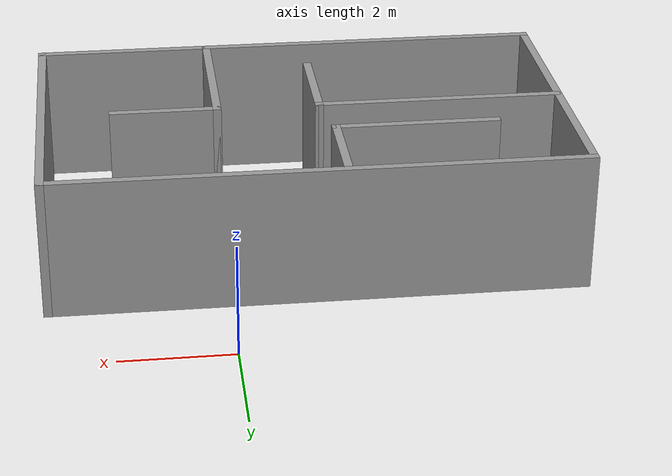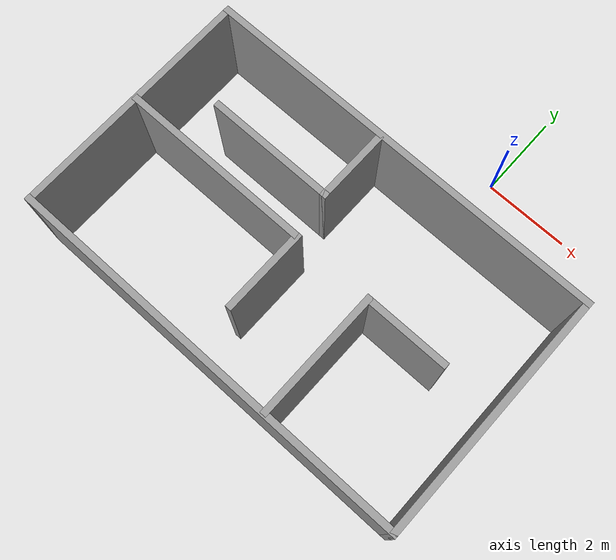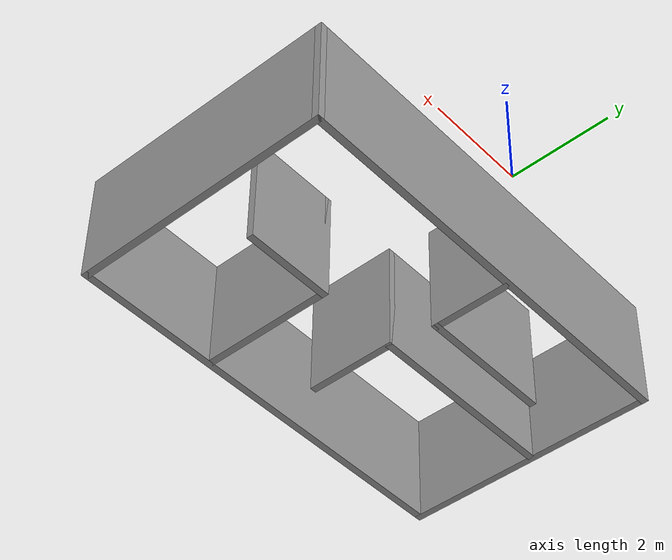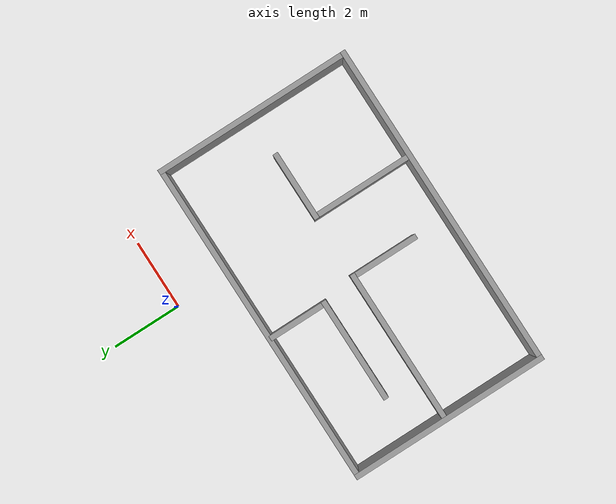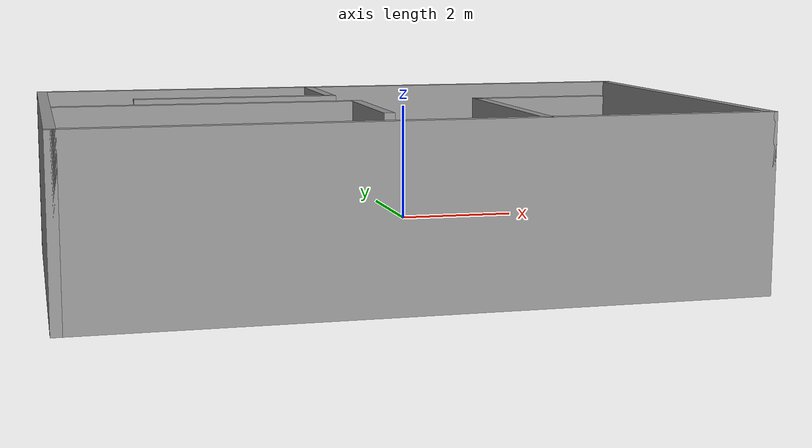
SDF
<?xml version='1.0'?>
<sdf version='1.7'>
  <model name='room'>
    <pose>-1.555 -3.6625 0 0 -0 0</pose>
    <link name='Wall_1'>
      <collision name='Wall_1_Collision'>
        <geometry>
          <box>
            <size>5.75 0.15 2.5</size>
          </box>
        </geometry>
        <pose>0 0 1.25 0 -0 0</pose>
      </collision>
      <visual name='Wall_1_Visual'>
        <pose>0 0 1.25 0 -0 0</pose>
        <geometry>
          <box>
            <size>5.75 0.15 2.5</size>
          </box>
        </geometry>
        <material>
          <script>
            <uri>file://media/materials/scripts/gazebo.material</uri>
            <name>Gazebo/Grey</name>
          </script>
          <ambient>1 1 1 1</ambient>
        </material>
        <meta>
          <layer>0</layer>
        </meta>
      </visual>
      <pose>-4.675 -0.7875 0 0 -0 -1.5708</pose>
    </link>
    <link name='Wall_10'>
      <collision name='Wall_10_Collision'>
        <geometry>
          <box>
            <size>2 0.15 2.5</size>
          </box>
        </geometry>
        <pose>0 0 1.25 0 -0 0</pose>
      </collision>
      <visual name='Wall_10_Visual'>
        <pose>0 0 1.25 0 -0 0</pose>
        <geometry>
          <box>
            <size>2 0.15 2.5</size>
          </box>
        </geometry>
        <material>
          <script>
            <uri>file://media/materials/scripts/gazebo.material</uri>
            <name>Gazebo/Grey</name>
          </script>
          <ambient>1 1 1 1</ambient>
        </material>
        <meta>
          <layer>0</layer>
        </meta>
      </visual>
      <pose>2.47 -0.6975 0 0 -0 0</pose>
    </link>
    <link name='Wall_12'>
      <collision name='Wall_12_Collision'>
        <geometry>
          <box>
            <size>3 0.15 2.5</size>
          </box>
        </geometry>
        <pose>0 0 1.25 0 -0 0</pose>
      </collision>
      <visual name='Wall_12_Visual'>
        <pose>0 0 1.25 0 -0 0</pose>
        <geometry>
          <box>
            <size>3 0.15 2.5</size>
          </box>
        </geometry>
        <material>
          <script>
            <uri>file://media/materials/scripts/gazebo.material</uri>
            <name>Gazebo/Grey</name>
          </script>
          <ambient>1 1 1 1</ambient>
        </material>
        <meta>
          <layer>0</layer>
        </meta>
      </visual>
      <pose>-1.9 0.3225 0 0 -0 0</pose>
    </link>
    <link name='Wall_13'>
      <collision name='Wall_13_Collision'>
        <geometry>
          <box>
            <size>1.75 0.15 2.5</size>
          </box>
        </geometry>
        <pose>0 0 1.25 0 -0 0</pose>
      </collision>
      <visual name='Wall_13_Visual'>
        <pose>0 0 1.25 0 -0 0</pose>
        <geometry>
          <box>
            <size>1.75 0.15 2.5</size>
          </box>
        </geometry>
        <material>
          <script>
            <uri>file://media/materials/scripts/gazebo.material</uri>
            <name>Gazebo/Grey</name>
          </script>
          <ambient>1 1 1 1</ambient>
        </material>
        <meta>
          <layer>0</layer>
        </meta>
      </visual>
      <pose>-0.475 1.1225 0 0 -0 1.5708</pose>
    </link>
    <link name='Wall_2'>
      <collision name='Wall_2_Collision'>
        <geometry>
          <box>
            <size>9.5 0.15 2.5</size>
          </box>
        </geometry>
        <pose>0 0 1.25 0 -0 0</pose>
      </collision>
      <visual name='Wall_2_Visual'>
        <pose>0 0 1.25 0 -0 0</pose>
        <geometry>
          <box>
            <size>9.5 0.15 2.5</size>
          </box>
        </geometry>
        <material>
          <script>
            <uri>file://media/materials/scripts/gazebo.material</uri>
            <name>Gazebo/Grey</name>
          </script>
          <ambient>1 1 1 1</ambient>
        </material>
        <meta>
          <layer>0</layer>
        </meta>
      </visual>
      <pose>0 -3.5875 0 0 -0 0</pose>
    </link>
    <link name='Wall_3'>
      <collision name='Wall_3_Collision'>
        <geometry>
          <box>
            <size>5.75 0.15 2.5</size>
          </box>
        </geometry>
        <pose>0 0 1.25 0 -0 0</pose>
      </collision>
      <visual name='Wall_3_Visual'>
        <pose>0 0 1.25 0 -0 0</pose>
        <geometry>
          <box>
            <size>5.75 0.15 2.5</size>
          </box>
        </geometry>
        <material>
          <script>
            <uri>file://media/materials/scripts/gazebo.material</uri>
            <name>Gazebo/Grey</name>
          </script>
          <ambient>1 1 1 1</ambient>
        </material>
        <meta>
          <layer>0</layer>
        </meta>
      </visual>
      <pose>4.675 -0.7875 0 0 -0 1.5708</pose>
    </link>
    <link name='Wall_4'>
      <collision name='Wall_4_Collision'>
        <geometry>
          <box>
            <size>9.5 0.15 2.5</size>
          </box>
        </geometry>
        <pose>0 0 1.25 0 -0 0</pose>
      </collision>
      <visual name='Wall_4_Visual'>
        <pose>0 0 1.25 0 -0 0</pose>
        <geometry>
          <box>
            <size>9.5 0.15 2.5</size>
          </box>
        </geometry>
        <material>
          <script>
            <uri>file://media/materials/scripts/gazebo.material</uri>
            <name>Gazebo/Grey</name>
          </script>
          <ambient>1 1 1 1</ambient>
        </material>
        <meta>
          <layer>0</layer>
        </meta>
      </visual>
      <pose>0 2.0125 0 0 -0 3.14159</pose>
    </link>
    <link name='Wall_6'>
      <collision name='Wall_6_Collision'>
        <geometry>
          <box>
            <size>4.5 0.15 2.5</size>
          </box>
        </geometry>
        <pose>0 0 1.25 0 -0 0</pose>
      </collision>
      <visual name='Wall_6_Visual'>
        <pose>0 0 1.25 0 -0 0</pose>
        <geometry>
          <box>
            <size>4.5 0.15 2.5</size>
          </box>
        </geometry>
        <material>
          <script>
            <uri>file://media/materials/scripts/gazebo.material</uri>
            <name>Gazebo/Grey</name>
          </script>
          <ambient>1 1 1 1</ambient>
        </material>
        <meta>
          <layer>0</layer>
        </meta>
      </visual>
      <pose>-2.47 -0.6775 0 0 -0 0</pose>
    </link>
    <link name='Wall_7'>
      <collision name='Wall_7_Collision'>
        <geometry>
          <box>
            <size>2 0.15 2.5</size>
          </box>
        </geometry>
        <pose>0 0 1.25 0 -0 0</pose>
      </collision>
      <visual name='Wall_7_Visual'>
        <pose>0 0 1.25 0 -0 0</pose>
        <geometry>
          <box>
            <size>2 0.15 2.5</size>
          </box>
        </geometry>
        <material>
          <script>
            <uri>file://media/materials/scripts/gazebo.material</uri>
            <name>Gazebo/Grey</name>
          </script>
          <ambient>1 1 1 1</ambient>
        </material>
        <meta>
          <layer>0</layer>
        </meta>
      </visual>
      <pose>-0.295 -1.6025 0 0 -0 -1.5708</pose>
    </link>
    <link name='Wall_9'>
      <collision name='Wall_9_Collision'>
        <geometry>
          <box>
            <size>3 0.15 2.5</size>
          </box>
        </geometry>
        <pose>0 0 1.25 0 -0 0</pose>
      </collision>
      <visual name='Wall_9_Visual'>
        <pose>0 0 1.25 0 -0 0</pose>
        <geometry>
          <box>
            <size>3 0.15 2.5</size>
          </box>
        </geometry>
        <material>
          <script>
            <uri>file://media/materials/scripts/gazebo.material</uri>
            <name>Gazebo/Grey</name>
          </script>
          <ambient>1 1 1 1</ambient>
        </material>
        <meta>
          <layer>0</layer>
        </meta>
      </visual>
      <pose>1.545 -2.1225 0 0 -0 1.5708</pose>
    </link>
    <static>1</static>
  </model>
</sdf>
